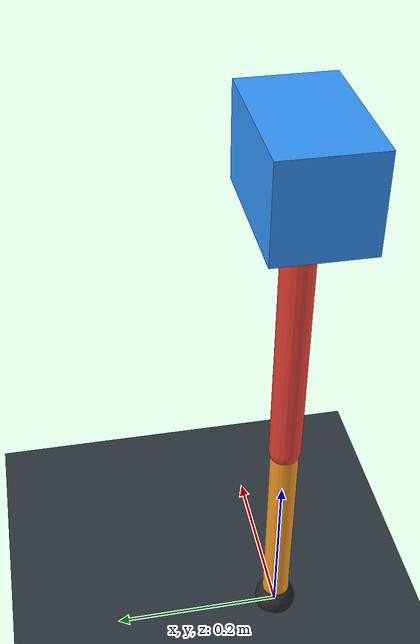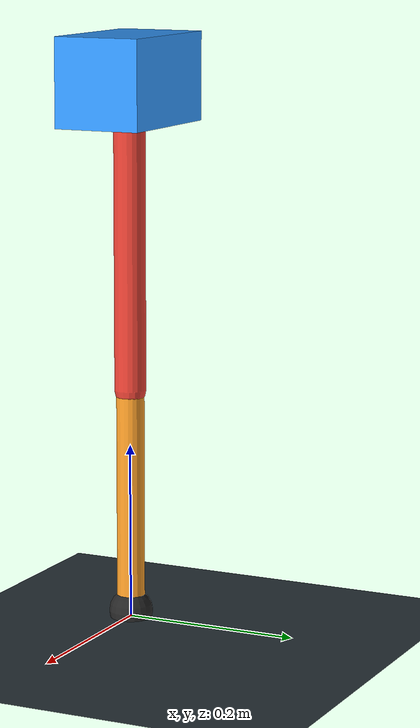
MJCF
<mujoco model="single_axis_two_bar">
  <compiler angle="radian" inertiafromgeom="true"/>
  <option timestep="0.001" integrator="implicitfast" gravity="0 0 -9.81"/>
  <default>
    <joint damping="0.08"/>
    <geom friction="1.2 0.01 0.0001" condim="3"/>
  </default>
  <worldbody>
    <geom name="floor" type="plane" size="5 5 0.1" rgba="0.18 0.22 0.25 1"/>
    <body name="carriage" pos="0 0 0.6136226951576608">
      <joint name="pole_slide" type="slide" axis="0 0 1"/>
      <geom name="payload" type="box" size="0.08 0.05 0.05" mass="2.7396022725731486" rgba="0.2 0.6 1 1"/>
      <body name="thigh" pos="0 0 0">
        <joint name="hip" type="hinge" axis="0 1 0"/>
        <geom name="thigh_link" type="capsule" fromto="0 0 0 0 0 -0.3495700202797241" size="0.018" mass="0.2490732586095805" rgba="0.9 0.25 0.2 1"/>
        <body name="shank" pos="0 0 -0.3495700202797241">
          <joint name="knee" type="hinge" axis="0 1 0"/>
          <geom name="shank_link" type="capsule" fromto="0 0 0 0 0 -0.2572575005013694" size="0.016" mass="0.18329936846517503" rgba="0.95 0.6 0.15 1"/>
          <geom name="foot" type="sphere" pos="0 0 -0.2572575005013694" size="0.025" mass="0.03" rgba="0.15 0.15 0.15 1"/>
          <site name="toe" pos="0 0 -0.2572575005013694" size="0.008"/>
        </body>
      </body>
    </body>
  </worldbody>
  <actuator>
    <motor name="hip_motor" joint="hip" ctrlrange="-35.76914205820475 35.76914205820475"/>
    <motor name="knee_motor" joint="knee" ctrlrange="-64.58874335715312 64.58874335715312"/>
  </actuator>
</mujoco>
